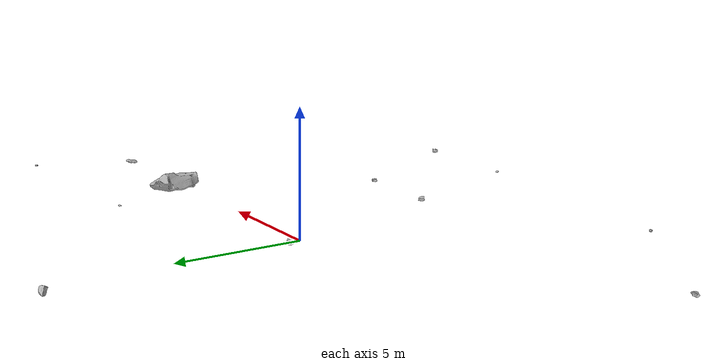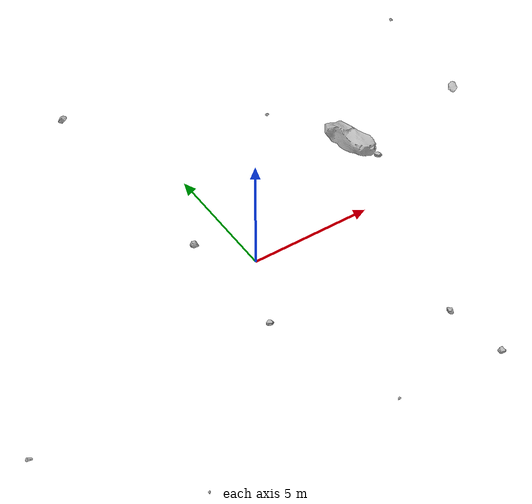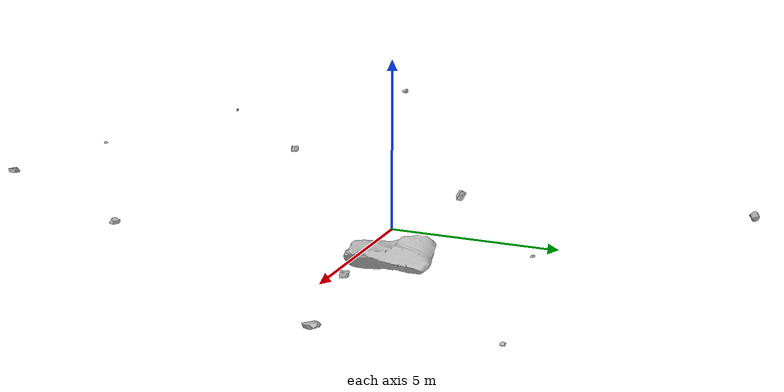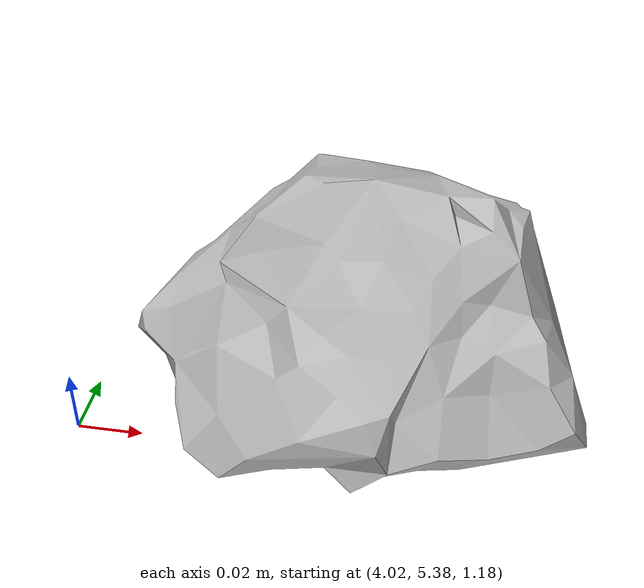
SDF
<sdf version="1.7">
 <world name="marsyard">
  <gravity>0 0 -9.81</gravity>
  <physics name="dart_physics" type="ignored">
   <max_step_size>0.003</max_step_size>
   <real_time_update_rate>333</real_time_update_rate>
   <real_time_factor>1.0</real_time_factor>
  </physics>
  <plugin filename="ignition-gazebo-physics-system" name="ignition::gazebo::systems::Physics"/>
  <plugin filename="ignition-gazebo-user-commands-system" name="ignition::gazebo::systems::UserCommands"/>
  <plugin filename="ignition-gazebo-scene-broadcaster-system" name="ignition::gazebo::systems::SceneBroadcaster"/>
  <plugin filename="ignition-gazebo-contact-system" name="ignition::gazebo::systems::Contact"/>
  <scene>
   <ambient>0.95 0.95 0.95 1</ambient>
   <background>0.70 0.70 0.70 1</background>
   <shadows>false</shadows>
  </scene>
  <light type="directional" name="sun">
   <cast_shadows>false</cast_shadows>
   <pose>0 0 30 0 0 0</pose>
   <diffuse>1 1 1 1</diffuse>
   <specular>0.15 0.15 0.15 1</specular>
   <direction>-0.35 0.1 -0.93</direction>
  </light>
  <model name="Rock_1">
   <static>true</static>
   <pose>4.2687 -6.6032 0.6314 0.0000 0.0000 0.2073</pose>
   <link name="link">
    <visual name="visual">
     <geometry><mesh><uri>package://rock_generator/rocks_ws/rock_1/meshes/rock_1.stl</uri></mesh></geometry>
    </visual>
   </link>
  </model>
  <model name="Rock_2">
   <static>true</static>
   <pose>10.9159 6.8214 1.6994 0.0000 0.0000 1.3007</pose>
   <link name="link">
    <visual name="visual">
     <geometry><mesh><uri>package://rock_generator/rocks_ws/rock_5/meshes/rock_5.stl</uri></mesh></geometry>
    </visual>
    <collision name="collision">
     <geometry><mesh><uri>package://rock_generator/rocks_ws/rock_5/meshes/rock_5.stl</uri></mesh></geometry>
    </collision>
   </link>
  </model>
  <model name="Rock_3">
   <static>true</static>
   <pose>5.9666 2.3458 1.1141 0.0000 0.0000 1.9541</pose>
   <link name="link">
    <visual name="visual">
     <geometry><mesh><uri>package://rock_generator/rocks_ws/rock_4/meshes/rock_4.stl</uri></mesh></geometry>
    </visual>
   </link>
  </model>
  <model name="Rock_4">
   <static>true</static>
   <pose>-12.6412 -4.5632 1.1034 0.0000 0.0000 -0.4554</pose>
   <link name="link">
    <visual name="visual">
     <geometry><mesh><uri>package://rock_generator/rocks_ws/rock_6/meshes/rock_6.stl</uri></mesh></geometry>
    </visual>
    <collision name="collision">
     <geometry><mesh><uri>package://rock_generator/rocks_ws/rock_6/meshes/rock_6.stl</uri></mesh></geometry>
    </collision>
   </link>
  </model>
  <model name="Rock_5">
   <static>true</static>
   <pose>6.5444 1.3932 0.9265 0.0000 0.0000 1.1137</pose>
   <link name="link">
    <visual name="visual">
     <geometry><mesh><uri>package://rock_generator/rocks_ws/rock_1/meshes/rock_1.stl</uri></mesh></geometry>
    </visual>
    <collision name="collision">
     <geometry><mesh><uri>package://rock_generator/rocks_ws/rock_1/meshes/rock_1.stl</uri></mesh></geometry>
    </collision>
   </link>
  </model>
  <model name="Rock_6">
   <static>true</static>
   <pose>-0.2364 -9.7683 1.5712 0.0000 0.0000 -2.3866</pose>
   <link name="link">
    <visual name="visual">
     <geometry><mesh><uri>package://rock_generator/rocks_ws/rock_5/meshes/rock_5.stl</uri></mesh></geometry>
    </visual>
    <collision name="collision">
     <geometry><mesh><uri>package://rock_generator/rocks_ws/rock_5/meshes/rock_5.stl</uri></mesh></geometry>
    </collision>
   </link>
  </model>
  <model name="Rock_7">
   <static>true</static>
   <pose>-2.0579 -4.0793 1.4369 0.0000 0.0000 1.4218</pose>
   <link name="link">
    <visual name="visual">
     <geometry><mesh><uri>package://rock_generator/rocks_ws/rock_1/meshes/rock_1.stl</uri></mesh></geometry>
    </visual>
    <collision name="collision">
     <geometry><mesh><uri>package://rock_generator/rocks_ws/rock_1/meshes/rock_1.stl</uri></mesh></geometry>
    </collision>
   </link>
  </model>
  <model name="Rock_8">
   <static>true</static>
   <pose>-1.7326 1.5306 0.6762 0.0000 0.0000 2.2154</pose>
   <link name="link">
    <visual name="visual">
     <geometry><mesh><uri>package://rock_generator/rocks_ws/rock_3/meshes/rock_3.stl</uri></mesh></geometry>
    </visual>
   </link>
  </model>
  <model name="Rock_9">
   <static>true</static>
   <pose>10.8660 2.5441 1.4381 0.0000 0.0000 -2.2134</pose>
   <link name="link">
    <visual name="visual">
     <geometry><mesh><uri>package://rock_generator/rocks_ws/rock_8/meshes/rock_8.stl</uri></mesh></geometry>
    </visual>
    <collision name="collision">
     <geometry><mesh><uri>package://rock_generator/rocks_ws/rock_8/meshes/rock_8.stl</uri></mesh></geometry>
    </collision>
   </link>
  </model>
  <model name="Rock_10">
   <static>true</static>
   <pose>4.0984 5.4255 1.2009 0.0000 0.0000 0.0240</pose>
   <link name="link">
    <visual name="visual">
     <geometry><mesh><uri>package://rock_generator/rocks_ws/rock_5/meshes/rock_5.stl</uri></mesh></geometry>
    </visual>
    <collision name="collision">
     <geometry><mesh><uri>package://rock_generator/rocks_ws/rock_5/meshes/rock_5.stl</uri></mesh></geometry>
    </collision>
   </link>
  </model>
  <model name="Rock_12">
   <static>true</static>
   <pose>4.1145 -10.0510 1.7021 0.0000 0.0000 -2.5249</pose>
   <link name="link">
    <visual name="visual">
     <geometry><mesh><uri>package://rock_generator/rocks_ws/rock_1/meshes/rock_1.stl</uri></mesh></geometry>
    </visual>
   </link>
  </model>
  <model name="Rock_13">
   <static>true</static>
   <pose>-8.0440 -9.2761 0.9617 0.0000 0.0000 0.3818</pose>
   <link name="link">
    <visual name="visual">
     <geometry><mesh><uri>package://rock_generator/rocks_ws/rock_9/meshes/rock_9.stl</uri></mesh></geometry>
    </visual>
    <collision name="collision">
     <geometry><mesh><uri>package://rock_generator/rocks_ws/rock_9/meshes/rock_9.stl</uri></mesh></geometry>
    </collision>
   </link>
  </model>
  <model name="Rock_14">
   <static>true</static>
   <pose>-2.5608 9.8394 0.8139 0.0000 0.0000 -0.7990</pose>
   <link name="link">
    <visual name="visual">
     <geometry><mesh><uri>package://rock_generator/rocks_ws/rock_3/meshes/rock_3.stl</uri></mesh></geometry>
    </visual>
    <collision name="collision">
     <geometry><mesh><uri>package://rock_generator/rocks_ws/rock_3/meshes/rock_3.stl</uri></mesh></geometry>
    </collision>
   </link>
  </model>
 </world>
</sdf>
